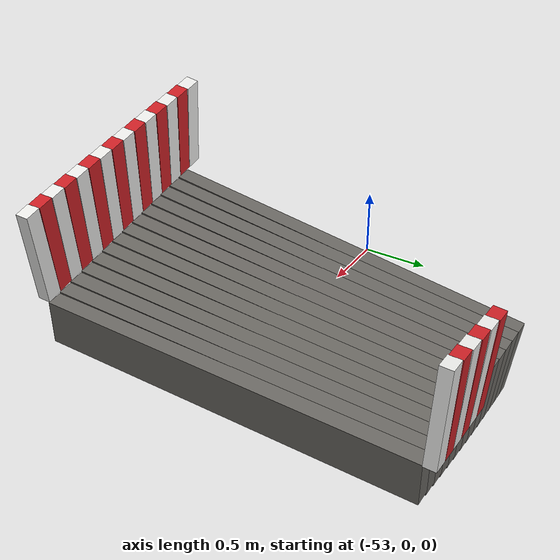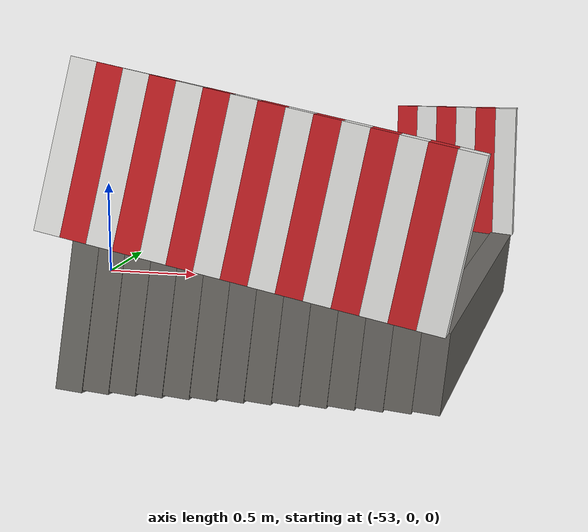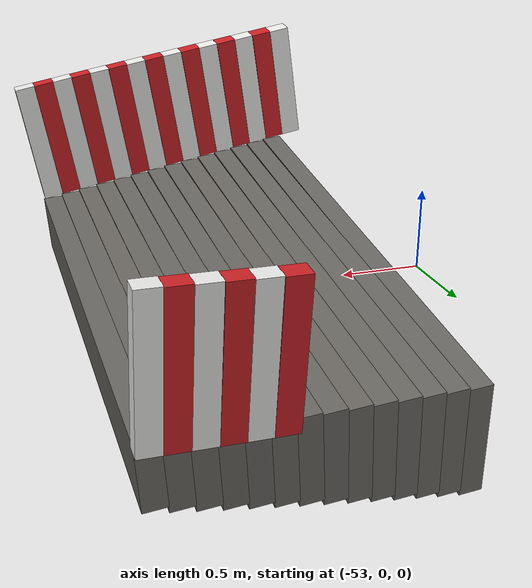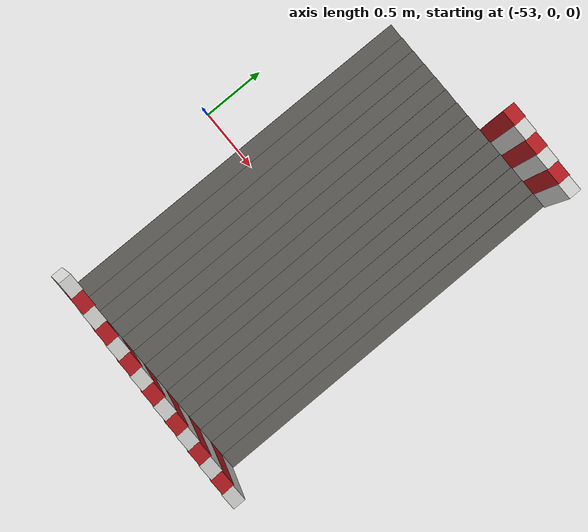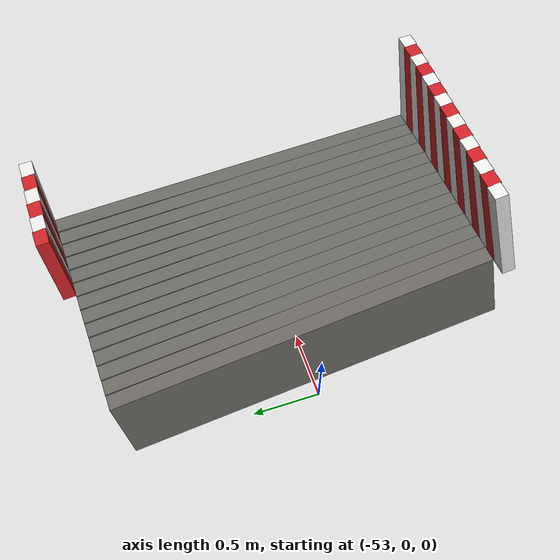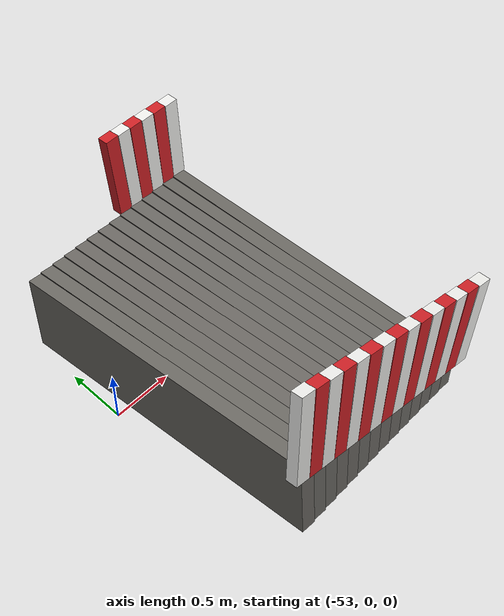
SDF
<sdf version="1.10">
 <world name="ika_parkur">
  <model name="parkur_road">
   <static>true</static>
   <link name="road_0025">
    <pose>-50.955652 -0.010721 -0.093187 0.057574 -0.097746 3.141593</pose>
    <collision name="road_0025_col">
     <geometry><box><size>0.128112 3 0.372626</size></box></geometry>
     <surface>
      <friction><ode><mu>1</mu><mu2>1</mu2></ode></friction>
      <contact><ode><kp>1000000</kp><kd>1</kd></ode></contact>
     </surface>
    </collision>
    <visual name="road_0025_vis">
     <geometry><box><size>0.128112 3 0.372626</size></box></geometry>
     <material>
      <ambient>0.42 0.41 0.39 1</ambient>
      <diffuse>0.42 0.41 0.39 1</diffuse>
      <specular>0.1 0.1 0.1 1</specular>
     </material>
    </visual>
   </link>
   <link name="road_0026">
    <pose>-51.081842 -0.01306 -0.093064 0.065799 -0.097746 3.141593</pose>
    <collision name="road_0026_col">
     <geometry><box><size>0.128112 3 0.397253</size></box></geometry>
     <surface>
      <friction><ode><mu>1</mu><mu2>1</mu2></ode></friction>
      <contact><ode><kp>1000000</kp><kd>1</kd></ode></contact>
     </surface>
    </collision>
    <visual name="road_0026_vis">
     <geometry><box><size>0.128112 3 0.397253</size></box></geometry>
     <material>
      <ambient>0.42 0.41 0.39 1</ambient>
      <diffuse>0.42 0.41 0.39 1</diffuse>
      <specular>0.1 0.1 0.1 1</specular>
     </material>
    </visual>
   </link>
   <link name="road_0027">
    <pose>-51.208029 -0.0156 -0.092908 0.074023 -0.097746 3.141593</pose>
    <collision name="road_0027_col">
     <geometry><box><size>0.128112 3 0.421867</size></box></geometry>
     <surface>
      <friction><ode><mu>1</mu><mu2>1</mu2></ode></friction>
      <contact><ode><kp>1000000</kp><kd>1</kd></ode></contact>
     </surface>
    </collision>
    <visual name="road_0027_vis">
     <geometry><box><size>0.128112 3 0.421867</size></box></geometry>
     <material>
      <ambient>0.42 0.41 0.39 1</ambient>
      <diffuse>0.42 0.41 0.39 1</diffuse>
      <specular>0.1 0.1 0.1 1</specular>
     </material>
    </visual>
   </link>
   <link name="road_0028">
    <pose>-51.334212 -0.01834 -0.092715 0.082248 -0.097746 3.141593</pose>
    <collision name="road_0028_col">
     <geometry><box><size>0.128112 3 0.446466</size></box></geometry>
     <surface>
      <friction><ode><mu>1</mu><mu2>1</mu2></ode></friction>
      <contact><ode><kp>1000000</kp><kd>1</kd></ode></contact>
     </surface>
    </collision>
    <visual name="road_0028_vis">
     <geometry><box><size>0.128112 3 0.446466</size></box></geometry>
     <material>
      <ambient>0.42 0.41 0.39 1</ambient>
      <diffuse>0.42 0.41 0.39 1</diffuse>
      <specular>0.1 0.1 0.1 1</specular>
     </material>
    </visual>
   </link>
   <link name="road_0029">
    <pose>-51.460391 -0.02128 -0.092483 0.090473 -0.097746 3.141593</pose>
    <collision name="road_0029_col">
     <geometry><box><size>0.128112 3 0.471049</size></box></geometry>
     <surface>
      <friction><ode><mu>1</mu><mu2>1</mu2></ode></friction>
      <contact><ode><kp>1000000</kp><kd>1</kd></ode></contact>
     </surface>
    </collision>
    <visual name="road_0029_vis">
     <geometry><box><size>0.128112 3 0.471049</size></box></geometry>
     <material>
      <ambient>0.42 0.41 0.39 1</ambient>
      <diffuse>0.42 0.41 0.39 1</diffuse>
      <specular>0.1 0.1 0.1 1</specular>
     </material>
    </visual>
   </link>
   <link name="road_0030">
    <pose>-51.586566 -0.024418 -0.092208 0.098698 -0.097746 3.141593</pose>
    <collision name="road_0030_col">
     <geometry><box><size>0.128112 3 0.495613</size></box></geometry>
     <surface>
      <friction><ode><mu>1</mu><mu2>1</mu2></ode></friction>
      <contact><ode><kp>1000000</kp><kd>1</kd></ode></contact>
     </surface>
    </collision>
    <visual name="road_0030_vis">
     <geometry><box><size>0.128112 3 0.495613</size></box></geometry>
     <material>
      <ambient>0.42 0.41 0.39 1</ambient>
      <diffuse>0.42 0.41 0.39 1</diffuse>
      <specular>0.1 0.1 0.1 1</specular>
     </material>
    </visual>
   </link>
   <link name="road_0031">
    <pose>-51.712736 -0.027755 -0.091886 0.106923 -0.097746 3.141593</pose>
    <collision name="road_0031_col">
     <geometry><box><size>0.128112 3 0.520157</size></box></geometry>
     <surface>
      <friction><ode><mu>1</mu><mu2>1</mu2></ode></friction>
      <contact><ode><kp>1000000</kp><kd>1</kd></ode></contact>
     </surface>
    </collision>
    <visual name="road_0031_vis">
     <geometry><box><size>0.128112 3 0.520157</size></box></geometry>
     <material>
      <ambient>0.42 0.41 0.39 1</ambient>
      <diffuse>0.42 0.41 0.39 1</diffuse>
      <specular>0.1 0.1 0.1 1</specular>
     </material>
    </visual>
   </link>
   <link name="road_0032">
    <pose>-51.838902 -0.03129 -0.091515 0.115147 -0.097746 3.141593</pose>
    <collision name="road_0032_col">
     <geometry><box><size>0.128112 3 0.544679</size></box></geometry>
     <surface>
      <friction><ode><mu>1</mu><mu2>1</mu2></ode></friction>
      <contact><ode><kp>1000000</kp><kd>1</kd></ode></contact>
     </surface>
    </collision>
    <visual name="road_0032_vis">
     <geometry><box><size>0.128112 3 0.544679</size></box></geometry>
     <material>
      <ambient>0.42 0.41 0.39 1</ambient>
      <diffuse>0.42 0.41 0.39 1</diffuse>
      <specular>0.1 0.1 0.1 1</specular>
     </material>
    </visual>
   </link>
   <link name="road_0033">
    <pose>-51.965062 -0.035021 -0.091091 0.123372 -0.097746 3.141593</pose>
    <collision name="road_0033_col">
     <geometry><box><size>0.128112 3 0.569178</size></box></geometry>
     <surface>
      <friction><ode><mu>1</mu><mu2>1</mu2></ode></friction>
      <contact><ode><kp>1000000</kp><kd>1</kd></ode></contact>
     </surface>
    </collision>
    <visual name="road_0033_vis">
     <geometry><box><size>0.128112 3 0.569178</size></box></geometry>
     <material>
      <ambient>0.42 0.41 0.39 1</ambient>
      <diffuse>0.42 0.41 0.39 1</diffuse>
      <specular>0.1 0.1 0.1 1</specular>
     </material>
    </visual>
   </link>
   <link name="road_0034">
    <pose>-52.091217 -0.038949 -0.09061 0.131597 -0.097746 3.141593</pose>
    <collision name="road_0034_col">
     <geometry><box><size>0.128112 3 0.593653</size></box></geometry>
     <surface>
      <friction><ode><mu>1</mu><mu2>1</mu2></ode></friction>
      <contact><ode><kp>1000000</kp><kd>1</kd></ode></contact>
     </surface>
    </collision>
    <visual name="road_0034_vis">
     <geometry><box><size>0.128112 3 0.593653</size></box></geometry>
     <material>
      <ambient>0.42 0.41 0.39 1</ambient>
      <diffuse>0.42 0.41 0.39 1</diffuse>
      <specular>0.1 0.1 0.1 1</specular>
     </material>
    </visual>
   </link>
   <link name="road_0035">
    <pose>-52.217366 -0.043071 -0.090071 0.139822 -0.097746 3.141593</pose>
    <collision name="road_0035_col">
     <geometry><box><size>0.128112 3 0.6181</size></box></geometry>
     <surface>
      <friction><ode><mu>1</mu><mu2>1</mu2></ode></friction>
      <contact><ode><kp>1000000</kp><kd>1</kd></ode></contact>
     </surface>
    </collision>
    <visual name="road_0035_vis">
     <geometry><box><size>0.128112 3 0.6181</size></box></geometry>
     <material>
      <ambient>0.42 0.41 0.39 1</ambient>
      <diffuse>0.42 0.41 0.39 1</diffuse>
      <specular>0.1 0.1 0.1 1</specular>
     </material>
    </visual>
   </link>
   <link name="road_0036">
    <pose>-52.343509 -0.047388 -0.089469 0.148047 -0.097746 3.141593</pose>
    <collision name="road_0036_col">
     <geometry><box><size>0.128112 3 0.642519</size></box></geometry>
     <surface>
      <friction><ode><mu>1</mu><mu2>1</mu2></ode></friction>
      <contact><ode><kp>1000000</kp><kd>1</kd></ode></contact>
     </surface>
    </collision>
    <visual name="road_0036_vis">
     <geometry><box><size>0.128112 3 0.642519</size></box></geometry>
     <material>
      <ambient>0.42 0.41 0.39 1</ambient>
      <diffuse>0.42 0.41 0.39 1</diffuse>
      <specular>0.1 0.1 0.1 1</specular>
     </material>
    </visual>
   </link>
   <link name="road_0037">
    <pose>-52.469645 -0.051898 -0.088802 0.156271 -0.097746 3.141593</pose>
    <collision name="road_0037_col">
     <geometry><box><size>0.128112 3 0.666909</size></box></geometry>
     <surface>
      <friction><ode><mu>1</mu><mu2>1</mu2></ode></friction>
      <contact><ode><kp>1000000</kp><kd>1</kd></ode></contact>
     </surface>
    </collision>
    <visual name="road_0037_vis">
     <geometry><box><size>0.128112 3 0.666909</size></box></geometry>
     <material>
      <ambient>0.42 0.41 0.39 1</ambient>
      <diffuse>0.42 0.41 0.39 1</diffuse>
      <specular>0.1 0.1 0.1 1</specular>
     </material>
    </visual>
   </link>
   <link name="road_0038">
    <pose>-52.595775 -0.056599 -0.088066 0.164496 -0.097746 3.141593</pose>
    <collision name="road_0038_col">
     <geometry><box><size>0.128112 3 0.691266</size></box></geometry>
     <surface>
      <friction><ode><mu>1</mu><mu2>1</mu2></ode></friction>
      <contact><ode><kp>1000000</kp><kd>1</kd></ode></contact>
     </surface>
    </collision>
    <visual name="road_0038_vis">
     <geometry><box><size>0.128112 3 0.691266</size></box></geometry>
     <material>
      <ambient>0.42 0.41 0.39 1</ambient>
      <diffuse>0.42 0.41 0.39 1</diffuse>
      <specular>0.1 0.1 0.1 1</specular>
     </material>
    </visual>
   </link>
  </model>
  <model name="parkur_barriers">
   <static>true</static>
   <link name="barrier_l_0025">
    <pose>-50.859098 -1.524515 0.579075 0.057574 -0.197249 3.135306</pose>
    <collision name="barrier_l_0025_col">
     <geometry><box><size>0.130024 0.1 0.8</size></box></geometry>
     <surface>
      <friction><ode><mu>0.6</mu><mu2>0.6</mu2></ode></friction>
      <contact><ode><kp>1000000</kp><kd>1</kd></ode></contact>
     </surface>
    </collision>
    <visual name="barrier_l_0025_vis">
     <geometry><box><size>0.130024 0.1 0.8</size></box></geometry>
     <material>
      <ambient>0.93 0.93 0.92 1</ambient>
      <diffuse>0.93 0.93 0.92 1</diffuse>
      <specular>0.1 0.1 0.1 1</specular>
     </material>
    </visual>
   </link>
   <link name="barrier_r_0025">
    <pose>-50.939136 1.570046 0.395712 0.057574 0.003735 -3.135306</pose>
    <collision name="barrier_r_0025_col">
     <geometry><box><size>0.127503 0.1 0.8</size></box></geometry>
     <surface>
      <friction><ode><mu>0.6</mu><mu2>0.6</mu2></ode></friction>
      <contact><ode><kp>1000000</kp><kd>1</kd></ode></contact>
     </surface>
    </collision>
    <visual name="barrier_r_0025_vis">
     <geometry><box><size>0.127503 0.1 0.8</size></box></geometry>
     <material>
      <ambient>0.93 0.93 0.92 1</ambient>
      <diffuse>0.93 0.93 0.92 1</diffuse>
      <specular>0.1 0.1 0.1 1</specular>
     </material>
    </visual>
   </link>
   <link name="barrier_l_0026">
    <pose>-50.984116 -1.520458 0.603859 0.065799 -0.197195 3.134469</pose>
    <collision name="barrier_l_0026_col">
     <geometry><box><size>0.130023 0.1 0.8</size></box></geometry>
     <surface>
      <friction><ode><mu>0.6</mu><mu2>0.6</mu2></ode></friction>
      <contact><ode><kp>1000000</kp><kd>1</kd></ode></contact>
     </surface>
    </collision>
    <visual name="barrier_l_0026_vis">
     <geometry><box><size>0.130023 0.1 0.8</size></box></geometry>
     <material>
      <ambient>0.81 0.13 0.15 1</ambient>
      <diffuse>0.81 0.13 0.15 1</diffuse>
      <specular>0.1 0.1 0.1 1</specular>
     </material>
    </visual>
   </link>
   <link name="barrier_r_0026">
    <pose>-51.064156 1.57249 0.395046 0.065799 0.00368 -3.134469</pose>
    <collision name="barrier_r_0026_col">
     <geometry><box><size>0.127504 0.1 0.8</size></box></geometry>
     <surface>
      <friction><ode><mu>0.6</mu><mu2>0.6</mu2></ode></friction>
      <contact><ode><kp>1000000</kp><kd>1</kd></ode></contact>
     </surface>
    </collision>
    <visual name="barrier_r_0026_vis">
     <geometry><box><size>0.127504 0.1 0.8</size></box></geometry>
     <material>
      <ambient>0.81 0.13 0.15 1</ambient>
      <diffuse>0.81 0.13 0.15 1</diffuse>
      <specular>0.1 0.1 0.1 1</specular>
     </material>
    </visual>
   </link>
   <link name="barrier_l_0027">
    <pose>-51.109138 -1.516298 0.628609 0.074023 -0.197134 3.133632</pose>
    <collision name="barrier_l_0027_col">
     <geometry><box><size>0.130022 0.1 0.8</size></box></geometry>
     <surface>
      <friction><ode><mu>0.6</mu><mu2>0.6</mu2></ode></friction>
      <contact><ode><kp>1000000</kp><kd>1</kd></ode></contact>
     </surface>
    </collision>
    <visual name="barrier_l_0027_vis">
     <geometry><box><size>0.130022 0.1 0.8</size></box></geometry>
     <material>
      <ambient>0.93 0.93 0.92 1</ambient>
      <diffuse>0.93 0.93 0.92 1</diffuse>
      <specular>0.1 0.1 0.1 1</specular>
     </material>
    </visual>
   </link>
   <link name="barrier_r_0027">
    <pose>-51.189179 1.574828 0.39436 0.074023 0.003618 -3.133632</pose>
    <collision name="barrier_r_0027_col">
     <geometry><box><size>0.127505 0.1 0.8</size></box></geometry>
     <surface>
      <friction><ode><mu>0.6</mu><mu2>0.6</mu2></ode></friction>
      <contact><ode><kp>1000000</kp><kd>1</kd></ode></contact>
     </surface>
    </collision>
    <visual name="barrier_r_0027_vis">
     <geometry><box><size>0.127505 0.1 0.8</size></box></geometry>
     <material>
      <ambient>0.93 0.93 0.92 1</ambient>
      <diffuse>0.93 0.93 0.92 1</diffuse>
      <specular>0.1 0.1 0.1 1</specular>
     </material>
    </visual>
   </link>
   <link name="barrier_l_0028">
    <pose>-51.234161 -1.512036 0.653325 0.082248 -0.197066 3.132796</pose>
    <collision name="barrier_l_0028_col">
     <geometry><box><size>0.130021 0.1 0.8</size></box></geometry>
     <surface>
      <friction><ode><mu>0.6</mu><mu2>0.6</mu2></ode></friction>
      <contact><ode><kp>1000000</kp><kd>1</kd></ode></contact>
     </surface>
    </collision>
    <visual name="barrier_l_0028_vis">
     <geometry><box><size>0.130021 0.1 0.8</size></box></geometry>
     <material>
      <ambient>0.81 0.13 0.15 1</ambient>
      <diffuse>0.81 0.13 0.15 1</diffuse>
      <specular>0.1 0.1 0.1 1</specular>
     </material>
    </visual>
   </link>
   <link name="barrier_r_0028">
    <pose>-51.314204 1.577059 0.393655 0.082248 0.003549 -3.132796</pose>
    <collision name="barrier_r_0028_col">
     <geometry><box><size>0.127506 0.1 0.8</size></box></geometry>
     <surface>
      <friction><ode><mu>0.6</mu><mu2>0.6</mu2></ode></friction>
      <contact><ode><kp>1000000</kp><kd>1</kd></ode></contact>
     </surface>
    </collision>
    <visual name="barrier_r_0028_vis">
     <geometry><box><size>0.127506 0.1 0.8</size></box></geometry>
     <material>
      <ambient>0.81 0.13 0.15 1</ambient>
      <diffuse>0.81 0.13 0.15 1</diffuse>
      <specular>0.1 0.1 0.1 1</specular>
     </material>
    </visual>
   </link>
   <link name="barrier_l_0029">
    <pose>-51.359188 -1.507671 0.678006 0.090473 -0.196992 3.131961</pose>
    <collision name="barrier_l_0029_col">
     <geometry><box><size>0.130021 0.1 0.8</size></box></geometry>
     <surface>
      <friction><ode><mu>0.6</mu><mu2>0.6</mu2></ode></friction>
      <contact><ode><kp>1000000</kp><kd>1</kd></ode></contact>
     </surface>
    </collision>
    <visual name="barrier_l_0029_vis">
     <geometry><box><size>0.130021 0.1 0.8</size></box></geometry>
     <material>
      <ambient>0.93 0.93 0.92 1</ambient>
      <diffuse>0.93 0.93 0.92 1</diffuse>
      <specular>0.1 0.1 0.1 1</specular>
     </material>
    </visual>
   </link>
   <link name="barrier_r_0029">
    <pose>-51.439232 1.579183 0.392933 0.090473 0.003473 -3.131961</pose>
    <collision name="barrier_r_0029_col">
     <geometry><box><size>0.127507 0.1 0.8</size></box></geometry>
     <surface>
      <friction><ode><mu>0.6</mu><mu2>0.6</mu2></ode></friction>
      <contact><ode><kp>1000000</kp><kd>1</kd></ode></contact>
     </surface>
    </collision>
    <visual name="barrier_r_0029_vis">
     <geometry><box><size>0.127507 0.1 0.8</size></box></geometry>
     <material>
      <ambient>0.93 0.93 0.92 1</ambient>
      <diffuse>0.93 0.93 0.92 1</diffuse>
      <specular>0.1 0.1 0.1 1</specular>
     </material>
    </visual>
   </link>
   <link name="barrier_l_0030">
    <pose>-51.484216 -1.503205 0.702651 0.098698 -0.196911 3.131126</pose>
    <collision name="barrier_l_0030_col">
     <geometry><box><size>0.13002 0.1 0.8</size></box></geometry>
     <surface>
      <friction><ode><mu>0.6</mu><mu2>0.6</mu2></ode></friction>
      <contact><ode><kp>1000000</kp><kd>1</kd></ode></contact>
     </surface>
    </collision>
    <visual name="barrier_l_0030_vis">
     <geometry><box><size>0.13002 0.1 0.8</size></box></geometry>
     <material>
      <ambient>0.81 0.13 0.15 1</ambient>
      <diffuse>0.81 0.13 0.15 1</diffuse>
      <specular>0.1 0.1 0.1 1</specular>
     </material>
    </visual>
   </link>
   <link name="barrier_r_0030">
    <pose>-51.564262 1.581201 0.392193 0.098698 0.003391 -3.131126</pose>
    <collision name="barrier_r_0030_col">
     <geometry><box><size>0.127508 0.1 0.8</size></box></geometry>
     <surface>
      <friction><ode><mu>0.6</mu><mu2>0.6</mu2></ode></friction>
      <contact><ode><kp>1000000</kp><kd>1</kd></ode></contact>
     </surface>
    </collision>
    <visual name="barrier_r_0030_vis">
     <geometry><box><size>0.127508 0.1 0.8</size></box></geometry>
     <material>
      <ambient>0.81 0.13 0.15 1</ambient>
      <diffuse>0.81 0.13 0.15 1</diffuse>
      <specular>0.1 0.1 0.1 1</specular>
     </material>
    </visual>
   </link>
   <link name="barrier_l_0031">
    <pose>-51.609247 -1.498636 0.727259 0.106923 -0.196823 3.130292</pose>
    <collision name="barrier_l_0031_col">
     <geometry><box><size>0.130018 0.1 0.8</size></box></geometry>
     <surface>
      <friction><ode><mu>0.6</mu><mu2>0.6</mu2></ode></friction>
      <contact><ode><kp>1000000</kp><kd>1</kd></ode></contact>
     </surface>
    </collision>
    <visual name="barrier_l_0031_vis">
     <geometry><box><size>0.130018 0.1 0.8</size></box></geometry>
     <material>
      <ambient>0.93 0.93 0.92 1</ambient>
      <diffuse>0.93 0.93 0.92 1</diffuse>
      <specular>0.1 0.1 0.1 1</specular>
     </material>
    </visual>
   </link>
   <link name="barrier_l_0032">
    <pose>-51.734281 -1.493966 0.75183 0.115147 -0.196729 3.129459</pose>
    <collision name="barrier_l_0032_col">
     <geometry><box><size>0.130017 0.1 0.8</size></box></geometry>
     <surface>
      <friction><ode><mu>0.6</mu><mu2>0.6</mu2></ode></friction>
      <contact><ode><kp>1000000</kp><kd>1</kd></ode></contact>
     </surface>
    </collision>
    <visual name="barrier_l_0032_vis">
     <geometry><box><size>0.130017 0.1 0.8</size></box></geometry>
     <material>
      <ambient>0.81 0.13 0.15 1</ambient>
      <diffuse>0.81 0.13 0.15 1</diffuse>
      <specular>0.1 0.1 0.1 1</specular>
     </material>
    </visual>
   </link>
   <link name="barrier_l_0033">
    <pose>-51.859317 -1.489194 0.776363 0.123372 -0.196627 3.128627</pose>
    <collision name="barrier_l_0033_col">
     <geometry><box><size>0.130016 0.1 0.8</size></box></geometry>
     <surface>
      <friction><ode><mu>0.6</mu><mu2>0.6</mu2></ode></friction>
      <contact><ode><kp>1000000</kp><kd>1</kd></ode></contact>
     </surface>
    </collision>
    <visual name="barrier_l_0033_vis">
     <geometry><box><size>0.130016 0.1 0.8</size></box></geometry>
     <material>
      <ambient>0.93 0.93 0.92 1</ambient>
      <diffuse>0.93 0.93 0.92 1</diffuse>
      <specular>0.1 0.1 0.1 1</specular>
     </material>
    </visual>
   </link>
   <link name="barrier_l_0034">
    <pose>-51.984356 -1.484322 0.800856 0.131597 -0.196519 3.127795</pose>
    <collision name="barrier_l_0034_col">
     <geometry><box><size>0.130015 0.1 0.8</size></box></geometry>
     <surface>
      <friction><ode><mu>0.6</mu><mu2>0.6</mu2></ode></friction>
      <contact><ode><kp>1000000</kp><kd>1</kd></ode></contact>
     </surface>
    </collision>
    <visual name="barrier_l_0034_vis">
     <geometry><box><size>0.130015 0.1 0.8</size></box></geometry>
     <material>
      <ambient>0.81 0.13 0.15 1</ambient>
      <diffuse>0.81 0.13 0.15 1</diffuse>
      <specular>0.1 0.1 0.1 1</specular>
     </material>
    </visual>
   </link>
   <link name="barrier_l_0035">
    <pose>-52.109397 -1.479349 0.82531 0.139822 -0.196405 3.126965</pose>
    <collision name="barrier_l_0035_col">
     <geometry><box><size>0.130013 0.1 0.8</size></box></geometry>
     <surface>
      <friction><ode><mu>0.6</mu><mu2>0.6</mu2></ode></friction>
      <contact><ode><kp>1000000</kp><kd>1</kd></ode></contact>
     </surface>
    </collision>
    <visual name="barrier_l_0035_vis">
     <geometry><box><size>0.130013 0.1 0.8</size></box></geometry>
     <material>
      <ambient>0.93 0.93 0.92 1</ambient>
      <diffuse>0.93 0.93 0.92 1</diffuse>
      <specular>0.1 0.1 0.1 1</specular>
     </material>
    </visual>
   </link>
   <link name="barrier_l_0036">
    <pose>-52.23444 -1.474276 0.849723 0.148047 -0.196283 3.126135</pose>
    <collision name="barrier_l_0036_col">
     <geometry><box><size>0.130012 0.1 0.8</size></box></geometry>
     <surface>
      <friction><ode><mu>0.6</mu><mu2>0.6</mu2></ode></friction>
      <contact><ode><kp>1000000</kp><kd>1</kd></ode></contact>
     </surface>
    </collision>
    <visual name="barrier_l_0036_vis">
     <geometry><box><size>0.130012 0.1 0.8</size></box></geometry>
     <material>
      <ambient>0.81 0.13 0.15 1</ambient>
      <diffuse>0.81 0.13 0.15 1</diffuse>
      <specular>0.1 0.1 0.1 1</specular>
     </material>
    </visual>
   </link>
   <link name="barrier_l_0037">
    <pose>-52.359487 -1.469102 0.874094 0.156271 -0.196155 3.125307</pose>
    <collision name="barrier_l_0037_col">
     <geometry><box><size>0.13001 0.1 0.8</size></box></geometry>
     <surface>
      <friction><ode><mu>0.6</mu><mu2>0.6</mu2></ode></friction>
      <contact><ode><kp>1000000</kp><kd>1</kd></ode></contact>
     </surface>
    </collision>
    <visual name="barrier_l_0037_vis">
     <geometry><box><size>0.13001 0.1 0.8</size></box></geometry>
     <material>
      <ambient>0.93 0.93 0.92 1</ambient>
      <diffuse>0.93 0.93 0.92 1</diffuse>
      <specular>0.1 0.1 0.1 1</specular>
     </material>
    </visual>
   </link>
   <link name="barrier_l_0038">
    <pose>-52.484535 -1.463829 0.898422 0.164496 -0.19602 3.12448</pose>
    <collision name="barrier_l_0038_col">
     <geometry><box><size>0.130008 0.1 0.8</size></box></geometry>
     <surface>
      <friction><ode><mu>0.6</mu><mu2>0.6</mu2></ode></friction>
      <contact><ode><kp>1000000</kp><kd>1</kd></ode></contact>
     </surface>
    </collision>
    <visual name="barrier_l_0038_vis">
     <geometry><box><size>0.130008 0.1 0.8</size></box></geometry>
     <material>
      <ambient>0.81 0.13 0.15 1</ambient>
      <diffuse>0.81 0.13 0.15 1</diffuse>
      <specular>0.1 0.1 0.1 1</specular>
     </material>
    </visual>
   </link>
   <link name="barrier_l_0039">
    <pose>-52.609586 -1.458457 0.922707 0.172721 -0.195879 3.123654</pose>
    <collision name="barrier_l_0039_col">
     <geometry><box><size>0.130007 0.1 0.8</size></box></geometry>
     <surface>
      <friction><ode><mu>0.6</mu><mu2>0.6</mu2></ode></friction>
      <contact><ode><kp>1000000</kp><kd>1</kd></ode></contact>
     </surface>
    </collision>
    <visual name="barrier_l_0039_vis">
     <geometry><box><size>0.130007 0.1 0.8</size></box></geometry>
     <material>
      <ambient>0.93 0.93 0.92 1</ambient>
      <diffuse>0.93 0.93 0.92 1</diffuse>
      <specular>0.1 0.1 0.1 1</specular>
     </material>
    </visual>
   </link>
  </model>
 </world>
</sdf>
